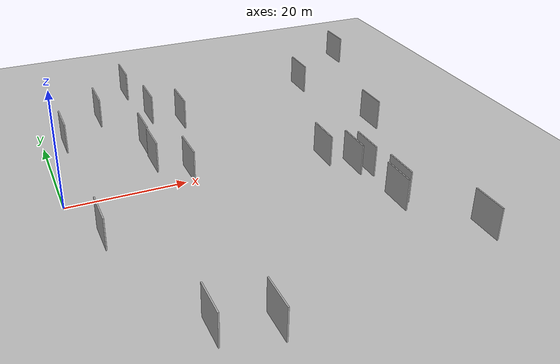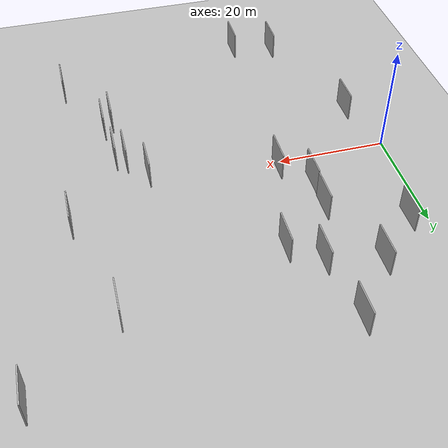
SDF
<?xml version="1.0" encoding="utf-8"?>

<sdf version="1.6">

   <world name="default">

      <gui fullscreen="0">

         <camera name="user_camera">

            <pose>-15 0 4.57585 0 0 0</pose>

            <view_controller>orbit</view_controller>

         </camera>

      </gui>

      <scene>

         <sky>

           <clouds>

             <speed>12</speed>

           </clouds>

         </sky>

         <ambient>0.4 0.4 0.4 1</ambient>

         <background>0.7 0.7 0.7 1</background>

         <shadows>1</shadows>

      </scene>

      <gravity>0 0 -9.8066</gravity>

      <magnetic_field>6e-06 2.3e-05 -4.2e-05</magnetic_field>

      <physics default="0" name="default_physics" type="ode">

         <ode>

            <solver>

               <type>quick</type>

               <iters>10</iters>

               <sor>1.0</sor>

               <use_dynamic_moi_rescaling>0</use_dynamic_moi_rescaling>

            </solver>

            <constraints>

               <cfm>0</cfm>

               <erp>0.2</erp>

               <contact_max_correcting_vel>100</contact_max_correcting_vel>

               <contact_surface_layer>0.001</contact_surface_layer>

            </constraints>

         </ode>

         <max_step_size>0.004</max_step_size>

         <real_time_factor>1</real_time_factor>

         <real_time_update_rate>250</real_time_update_rate>

      </physics>

      <light name="sun" type="directional">

         <cast_shadows>1</cast_shadows>

         <pose>0 0 10 0 0 0</pose>

         <diffuse>0.8 0.8 0.8 1</diffuse>

         <specular>0.2 0.2 0.2 1</specular>

         <attenuation>

            <range>1000</range>

            <constant>0.9</constant>

            <linear>0.01</linear>

            <quadratic>0.001</quadratic>

         </attenuation>

         <direction>-0.5 0.1 -0.9</direction>

      </light>

      <include>

         <name>ground_plane_1</name>

         <uri>model://HANNAS_ground_plane</uri>

         <pose>0 0 0  0 0 0</pose>

      </include>

      <include>

         <name>ground_plane_2</name>

         <uri>model://HANNAS_ground_plane</uri>

         <pose>100 0 0  0 0 0</pose>

      </include>

      <model name="HANNAS_wall_1">

         <static>1</static>

         <pose frame="">16.6074 13.3891 0.0 0.000000 0.000000 1.570796</pose>

         <link name="link">

            <pose frame="">0 0 3.00 0 0 0</pose>

            <collision name="collision">

               <geometry>

                  <box>

                     <size>6.00 0.2 6.00</size>

                  </box>

               </geometry>

               <max_contacts>10</max_contacts>

               <surface>

                  <contact>

                     <ode/>

                  </contact>

                  <bounce/>

                  <friction>

                     <torsional>

                        <ode/>

                     </torsional>

                     <ode/>

                  </friction>

               </surface>

            </collision>

            <visual name="visual">

               <cast_shadows>0</cast_shadows>

               <geometry>

                  <box>

                     <size>6.00 0.2 6.00</size>

                  </box>

               </geometry>

               <material>

                  <script>

                     <uri>model://HANNAS_wall/materials/scripts</uri>

                     <uri>model://HANNAS_wall/materials/textures</uri>

                     <name>vrc/HANNAS_wall</name>

                  </script>

               </material>

            </visual>

            <self_collide>0</self_collide>

            <enable_wind>0</enable_wind>

            <kinematic>0</kinematic>

         </link>

      </model>

      <model name="HANNAS_wall_2">

         <static>1</static>

         <pose frame="">11.3932 26.9885 0.0 0.000000 0.000000 1.570796</pose>

         <link name="link">

            <pose frame="">0 0 3.00 0 0 0</pose>

            <collision name="collision">

               <geometry>

                  <box>

                     <size>6.00 0.2 6.00</size>

                  </box>

               </geometry>

               <max_contacts>10</max_contacts>

               <surface>

                  <contact>

                     <ode/>

                  </contact>

                  <bounce/>

                  <friction>

                     <torsional>

                        <ode/>

                     </torsional>

                     <ode/>

                  </friction>

               </surface>

            </collision>

            <visual name="visual">

               <cast_shadows>0</cast_shadows>

               <geometry>

                  <box>

                     <size>6.00 0.2 6.00</size>

                  </box>

               </geometry>

               <material>

                  <script>

                     <uri>model://HANNAS_wall/materials/scripts</uri>

                     <uri>model://HANNAS_wall/materials/textures</uri>

                     <name>vrc/HANNAS_wall</name>

                  </script>

               </material>

            </visual>

            <self_collide>0</self_collide>

            <enable_wind>0</enable_wind>

            <kinematic>0</kinematic>

         </link>

      </model>

      <model name="HANNAS_wall_3">

         <static>1</static>

         <pose frame="">50.0877 -16.4734 0.0 0.000000 0.000000 1.570796</pose>

         <link name="link">

            <pose frame="">0 0 3.00 0 0 0</pose>

            <collision name="collision">

               <geometry>

                  <box>

                     <size>6.00 0.2 6.00</size>

                  </box>

               </geometry>

               <max_contacts>10</max_contacts>

               <surface>

                  <contact>

                     <ode/>

                  </contact>

                  <bounce/>

                  <friction>

                     <torsional>

                        <ode/>

                     </torsional>

                     <ode/>

                  </friction>

               </surface>

            </collision>

            <visual name="visual">

               <cast_shadows>0</cast_shadows>

               <geometry>

                  <box>

                     <size>6.00 0.2 6.00</size>

                  </box>

               </geometry>

               <material>

                  <script>

                     <uri>model://HANNAS_wall/materials/scripts</uri>

                     <uri>model://HANNAS_wall/materials/textures</uri>

                     <name>vrc/HANNAS_wall</name>

                  </script>

               </material>

            </visual>

            <self_collide>0</self_collide>

            <enable_wind>0</enable_wind>

            <kinematic>0</kinematic>

         </link>

      </model>

      <model name="HANNAS_wall_4">

         <static>1</static>

         <pose frame="">53.4508 26.8519 0.0 0.000000 0.000000 1.570796</pose>

         <link name="link">

            <pose frame="">0 0 3.00 0 0 0</pose>

            <collision name="collision">

               <geometry>

                  <box>

                     <size>6.00 0.2 6.00</size>

                  </box>

               </geometry>

               <max_contacts>10</max_contacts>

               <surface>

                  <contact>

                     <ode/>

                  </contact>

                  <bounce/>

                  <friction>

                     <torsional>

                        <ode/>

                     </torsional>

                     <ode/>

                  </friction>

               </surface>

            </collision>

            <visual name="visual">

               <cast_shadows>0</cast_shadows>

               <geometry>

                  <box>

                     <size>6.00 0.2 6.00</size>

                  </box>

               </geometry>

               <material>

                  <script>

                     <uri>model://HANNAS_wall/materials/scripts</uri>

                     <uri>model://HANNAS_wall/materials/textures</uri>

                     <name>vrc/HANNAS_wall</name>

                  </script>

               </material>

            </visual>

            <self_collide>0</self_collide>

            <enable_wind>0</enable_wind>

            <kinematic>0</kinematic>

         </link>

      </model>

      <model name="HANNAS_wall_5">

         <static>1</static>

         <pose frame="">21.2005 1.9819 0.0 0.000000 0.000000 1.570796</pose>

         <link name="link">

            <pose frame="">0 0 3.00 0 0 0</pose>

            <collision name="collision">

               <geometry>

                  <box>

                     <size>6.00 0.2 6.00</size>

                  </box>

               </geometry>

               <max_contacts>10</max_contacts>

               <surface>

                  <contact>

                     <ode/>

                  </contact>

                  <bounce/>

                  <friction>

                     <torsional>

                        <ode/>

                     </torsional>

                     <ode/>

                  </friction>

               </surface>

            </collision>

            <visual name="visual">

               <cast_shadows>0</cast_shadows>

               <geometry>

                  <box>

                     <size>6.00 0.2 6.00</size>

                  </box>

               </geometry>

               <material>

                  <script>

                     <uri>model://HANNAS_wall/materials/scripts</uri>

                     <uri>model://HANNAS_wall/materials/textures</uri>

                     <name>vrc/HANNAS_wall</name>

                  </script>

               </material>

            </visual>

            <self_collide>0</self_collide>

            <enable_wind>0</enable_wind>

            <kinematic>0</kinematic>

         </link>

      </model>

      <model name="HANNAS_wall_6">

         <static>1</static>

         <pose frame="">3.6694 19.3817 0.0 0.000000 0.000000 1.570796</pose>

         <link name="link">

            <pose frame="">0 0 3.00 0 0 0</pose>

            <collision name="collision">

               <geometry>

                  <box>

                     <size>6.00 0.2 6.00</size>

                  </box>

               </geometry>

               <max_contacts>10</max_contacts>

               <surface>

                  <contact>

                     <ode/>

                  </contact>

                  <bounce/>

                  <friction>

                     <torsional>

                        <ode/>

                     </torsional>

                     <ode/>

                  </friction>

               </surface>

            </collision>

            <visual name="visual">

               <cast_shadows>0</cast_shadows>

               <geometry>

                  <box>

                     <size>6.00 0.2 6.00</size>

                  </box>

               </geometry>

               <material>

                  <script>

                     <uri>model://HANNAS_wall/materials/scripts</uri>

                     <uri>model://HANNAS_wall/materials/textures</uri>

                     <name>vrc/HANNAS_wall</name>

                  </script>

               </material>

            </visual>

            <self_collide>0</self_collide>

            <enable_wind>0</enable_wind>

            <kinematic>0</kinematic>

         </link>

      </model>

      <model name="HANNAS_wall_7">

         <static>1</static>

         <pose frame="">67.8193 38.0876 0.0 0.000000 0.000000 1.570796</pose>

         <link name="link">

            <pose frame="">0 0 3.00 0 0 0</pose>

            <collision name="collision">

               <geometry>

                  <box>

                     <size>6.00 0.2 6.00</size>

                  </box>

               </geometry>

               <max_contacts>10</max_contacts>

               <surface>

                  <contact>

                     <ode/>

                  </contact>

                  <bounce/>

                  <friction>

                     <torsional>

                        <ode/>

                     </torsional>

                     <ode/>

                  </friction>

               </surface>

            </collision>

            <visual name="visual">

               <cast_shadows>0</cast_shadows>

               <geometry>

                  <box>

                     <size>6.00 0.2 6.00</size>

                  </box>

               </geometry>

               <material>

                  <script>

                     <uri>model://HANNAS_wall/materials/scripts</uri>

                     <uri>model://HANNAS_wall/materials/textures</uri>

                     <name>vrc/HANNAS_wall</name>

                  </script>

               </material>

            </visual>

            <self_collide>0</self_collide>

            <enable_wind>0</enable_wind>

            <kinematic>0</kinematic>

         </link>

      </model>

      <model name="HANNAS_wall_8">

         <static>1</static>

         <pose frame="">47.4550 -6.4200 0.0 0.000000 0.000000 1.570796</pose>

         <link name="link">

            <pose frame="">0 0 3.00 0 0 0</pose>

            <collision name="collision">

               <geometry>

                  <box>

                     <size>6.00 0.2 6.00</size>

                  </box>

               </geometry>

               <max_contacts>10</max_contacts>

               <surface>

                  <contact>

                     <ode/>

                  </contact>

                  <bounce/>

                  <friction>

                     <torsional>

                        <ode/>

                     </torsional>

                     <ode/>

                  </friction>

               </surface>

            </collision>

            <visual name="visual">

               <cast_shadows>0</cast_shadows>

               <geometry>

                  <box>

                     <size>6.00 0.2 6.00</size>

                  </box>

               </geometry>

               <material>

                  <script>

                     <uri>model://HANNAS_wall/materials/scripts</uri>

                     <uri>model://HANNAS_wall/materials/textures</uri>

                     <name>vrc/HANNAS_wall</name>

                  </script>

               </material>

            </visual>

            <self_collide>0</self_collide>

            <enable_wind>0</enable_wind>

            <kinematic>0</kinematic>

         </link>

      </model>

      <model name="HANNAS_wall_9">

         <static>1</static>

         <pose frame="">3.5678 -10.9646 0.0 0.000000 0.000000 1.570796</pose>

         <link name="link">

            <pose frame="">0 0 3.00 0 0 0</pose>

            <collision name="collision">

               <geometry>

                  <box>

                     <size>6.00 0.2 6.00</size>

                  </box>

               </geometry>

               <max_contacts>10</max_contacts>

               <surface>

                  <contact>

                     <ode/>

                  </contact>

                  <bounce/>

                  <friction>

                     <torsional>

                        <ode/>

                     </torsional>

                     <ode/>

                  </friction>

               </surface>

            </collision>

            <visual name="visual">

               <cast_shadows>0</cast_shadows>

               <geometry>

                  <box>

                     <size>6.00 0.2 6.00</size>

                  </box>

               </geometry>

               <material>

                  <script>

                     <uri>model://HANNAS_wall/materials/scripts</uri>

                     <uri>model://HANNAS_wall/materials/textures</uri>

                     <name>vrc/HANNAS_wall</name>

                  </script>

               </material>

            </visual>

            <self_collide>0</self_collide>

            <enable_wind>0</enable_wind>

            <kinematic>0</kinematic>

         </link>

      </model>

      <model name="HANNAS_wall_10">

         <static>1</static>

         <pose frame="">49.2062 -7.6290 0.0 0.000000 0.000000 1.570796</pose>

         <link name="link">

            <pose frame="">0 0 3.00 0 0 0</pose>

            <collision name="collision">

               <geometry>

                  <box>

                     <size>6.00 0.2 6.00</size>

                  </box>

               </geometry>

               <max_contacts>10</max_contacts>

               <surface>

                  <contact>

                     <ode/>

                  </contact>

                  <bounce/>

                  <friction>

                     <torsional>

                        <ode/>

                     </torsional>

                     <ode/>

                  </friction>

               </surface>

            </collision>

            <visual name="visual">

               <cast_shadows>0</cast_shadows>

               <geometry>

                  <box>

                     <size>6.00 0.2 6.00</size>

                  </box>

               </geometry>

               <material>

                  <script>

                     <uri>model://HANNAS_wall/materials/scripts</uri>

                     <uri>model://HANNAS_wall/materials/textures</uri>

                     <name>vrc/HANNAS_wall</name>

                  </script>

               </material>

            </visual>

            <self_collide>0</self_collide>

            <enable_wind>0</enable_wind>

            <kinematic>0</kinematic>

         </link>

      </model>

      <model name="HANNAS_wall_11">

         <static>1</static>

         <pose frame="">18.8695 36.5396 0.0 0.000000 0.000000 1.570796</pose>

         <link name="link">

            <pose frame="">0 0 3.00 0 0 0</pose>

            <collision name="collision">

               <geometry>

                  <box>

                     <size>6.00 0.2 6.00</size>

                  </box>

               </geometry>

               <max_contacts>10</max_contacts>

               <surface>

                  <contact>

                     <ode/>

                  </contact>

                  <bounce/>

                  <friction>

                     <torsional>

                        <ode/>

                     </torsional>

                     <ode/>

                  </friction>

               </surface>

            </collision>

            <visual name="visual">

               <cast_shadows>0</cast_shadows>

               <geometry>

                  <box>

                     <size>6.00 0.2 6.00</size>

                  </box>

               </geometry>

               <material>

                  <script>

                     <uri>model://HANNAS_wall/materials/scripts</uri>

                     <uri>model://HANNAS_wall/materials/textures</uri>

                     <name>vrc/HANNAS_wall</name>

                  </script>

               </material>

            </visual>

            <self_collide>0</self_collide>

            <enable_wind>0</enable_wind>

            <kinematic>0</kinematic>

         </link>

      </model>

      <model name="HANNAS_wall_12">

         <static>1</static>

         <pose frame="">19.5187 -36.9543 0.0 0.000000 0.000000 1.570796</pose>

         <link name="link">

            <pose frame="">0 0 3.00 0 0 0</pose>

            <collision name="collision">

               <geometry>

                  <box>

                     <size>6.00 0.2 6.00</size>

                  </box>

               </geometry>

               <max_contacts>10</max_contacts>

               <surface>

                  <contact>

                     <ode/>

                  </contact>

                  <bounce/>

                  <friction>

                     <torsional>

                        <ode/>

                     </torsional>

                     <ode/>

                  </friction>

               </surface>

            </collision>

            <visual name="visual">

               <cast_shadows>0</cast_shadows>

               <geometry>

                  <box>

                     <size>6.00 0.2 6.00</size>

                  </box>

               </geometry>

               <material>

                  <script>

                     <uri>model://HANNAS_wall/materials/scripts</uri>

                     <uri>model://HANNAS_wall/materials/textures</uri>

                     <name>vrc/HANNAS_wall</name>

                  </script>

               </material>

            </visual>

            <self_collide>0</self_collide>

            <enable_wind>0</enable_wind>

            <kinematic>0</kinematic>

         </link>

      </model>

      <model name="HANNAS_wall_13">

         <static>1</static>

         <pose frame="">20.6415 24.5656 0.0 0.000000 0.000000 1.570796</pose>

         <link name="link">

            <pose frame="">0 0 3.00 0 0 0</pose>

            <collision name="collision">

               <geometry>

                  <box>

                     <size>6.00 0.2 6.00</size>

                  </box>

               </geometry>

               <max_contacts>10</max_contacts>

               <surface>

                  <contact>

                     <ode/>

                  </contact>

                  <bounce/>

                  <friction>

                     <torsional>

                        <ode/>

                     </torsional>

                     <ode/>

                  </friction>

               </surface>

            </collision>

            <visual name="visual">

               <cast_shadows>0</cast_shadows>

               <geometry>

                  <box>

                     <size>6.00 0.2 6.00</size>

                  </box>

               </geometry>

               <material>

                  <script>

                     <uri>model://HANNAS_wall/materials/scripts</uri>

                     <uri>model://HANNAS_wall/materials/textures</uri>

                     <name>vrc/HANNAS_wall</name>

                  </script>

               </material>

            </visual>

            <self_collide>0</self_collide>

            <enable_wind>0</enable_wind>

            <kinematic>0</kinematic>

         </link>

      </model>

      <model name="HANNAS_wall_14">

         <static>1</static>

         <pose frame="">56.3731 -29.8533 0.0 0.000000 0.000000 1.570796</pose>

         <link name="link">

            <pose frame="">0 0 3.00 0 0 0</pose>

            <collision name="collision">

               <geometry>

                  <box>

                     <size>6.00 0.2 6.00</size>

                  </box>

               </geometry>

               <max_contacts>10</max_contacts>

               <surface>

                  <contact>

                     <ode/>

                  </contact>

                  <bounce/>

                  <friction>

                     <torsional>

                        <ode/>

                     </torsional>

                     <ode/>

                  </friction>

               </surface>

            </collision>

            <visual name="visual">

               <cast_shadows>0</cast_shadows>

               <geometry>

                  <box>

                     <size>6.00 0.2 6.00</size>

                  </box>

               </geometry>

               <material>

                  <script>

                     <uri>model://HANNAS_wall/materials/scripts</uri>

                     <uri>model://HANNAS_wall/materials/textures</uri>

                     <name>vrc/HANNAS_wall</name>

                  </script>

               </material>

            </visual>

            <self_collide>0</self_collide>

            <enable_wind>0</enable_wind>

            <kinematic>0</kinematic>

         </link>

      </model>

      <model name="HANNAS_wall_15">

         <static>1</static>

         <pose frame="">11.5971 -34.7823 0.0 0.000000 0.000000 1.570796</pose>

         <link name="link">

            <pose frame="">0 0 3.00 0 0 0</pose>

            <collision name="collision">

               <geometry>

                  <box>

                     <size>6.00 0.2 6.00</size>

                  </box>

               </geometry>

               <max_contacts>10</max_contacts>

               <surface>

                  <contact>

                     <ode/>

                  </contact>

                  <bounce/>

                  <friction>

                     <torsional>

                        <ode/>

                     </torsional>

                     <ode/>

                  </friction>

               </surface>

            </collision>

            <visual name="visual">

               <cast_shadows>0</cast_shadows>

               <geometry>

                  <box>

                     <size>6.00 0.2 6.00</size>

                  </box>

               </geometry>

               <material>

                  <script>

                     <uri>model://HANNAS_wall/materials/scripts</uri>

                     <uri>model://HANNAS_wall/materials/textures</uri>

                     <name>vrc/HANNAS_wall</name>

                  </script>

               </material>

            </visual>

            <self_collide>0</self_collide>

            <enable_wind>0</enable_wind>

            <kinematic>0</kinematic>

         </link>

      </model>

      <model name="HANNAS_wall_16">

         <static>1</static>

         <pose frame="">58.6077 6.9284 0.0 0.000000 0.000000 1.570796</pose>

         <link name="link">

            <pose frame="">0 0 3.00 0 0 0</pose>

            <collision name="collision">

               <geometry>

                  <box>

                     <size>6.00 0.2 6.00</size>

                  </box>

               </geometry>

               <max_contacts>10</max_contacts>

               <surface>

                  <contact>

                     <ode/>

                  </contact>

                  <bounce/>

                  <friction>

                     <torsional>

                        <ode/>

                     </torsional>

                     <ode/>

                  </friction>

               </surface>

            </collision>

            <visual name="visual">

               <cast_shadows>0</cast_shadows>

               <geometry>

                  <box>

                     <size>6.00 0.2 6.00</size>

                  </box>

               </geometry>

               <material>

                  <script>

                     <uri>model://HANNAS_wall/materials/scripts</uri>

                     <uri>model://HANNAS_wall/materials/textures</uri>

                     <name>vrc/HANNAS_wall</name>

                  </script>

               </material>

            </visual>

            <self_collide>0</self_collide>

            <enable_wind>0</enable_wind>

            <kinematic>0</kinematic>

         </link>

      </model>

      <model name="HANNAS_wall_17">

         <static>1</static>

         <pose frame="">25.7342 20.6157 0.0 0.000000 0.000000 1.570796</pose>

         <link name="link">

            <pose frame="">0 0 3.00 0 0 0</pose>

            <collision name="collision">

               <geometry>

                  <box>

                     <size>6.00 0.2 6.00</size>

                  </box>

               </geometry>

               <max_contacts>10</max_contacts>

               <surface>

                  <contact>

                     <ode/>

                  </contact>

                  <bounce/>

                  <friction>

                     <torsional>

                        <ode/>

                     </torsional>

                     <ode/>

                  </friction>

               </surface>

            </collision>

            <visual name="visual">

               <cast_shadows>0</cast_shadows>

               <geometry>

                  <box>

                     <size>6.00 0.2 6.00</size>

                  </box>

               </geometry>

               <material>

                  <script>

                     <uri>model://HANNAS_wall/materials/scripts</uri>

                     <uri>model://HANNAS_wall/materials/textures</uri>

                     <name>vrc/HANNAS_wall</name>

                  </script>

               </material>

            </visual>

            <self_collide>0</self_collide>

            <enable_wind>0</enable_wind>

            <kinematic>0</kinematic>

         </link>

      </model>

      <model name="HANNAS_wall_18">

         <static>1</static>

         <pose frame="">48.4342 -18.3689 0.0 0.000000 0.000000 1.570796</pose>

         <link name="link">

            <pose frame="">0 0 3.00 0 0 0</pose>

            <collision name="collision">

               <geometry>

                  <box>

                     <size>6.00 0.2 6.00</size>

                  </box>

               </geometry>

               <max_contacts>10</max_contacts>

               <surface>

                  <contact>

                     <ode/>

                  </contact>

                  <bounce/>

                  <friction>

                     <torsional>

                        <ode/>

                     </torsional>

                     <ode/>

                  </friction>

               </surface>

            </collision>

            <visual name="visual">

               <cast_shadows>0</cast_shadows>

               <geometry>

                  <box>

                     <size>6.00 0.2 6.00</size>

                  </box>

               </geometry>

               <material>

                  <script>

                     <uri>model://HANNAS_wall/materials/scripts</uri>

                     <uri>model://HANNAS_wall/materials/textures</uri>

                     <name>vrc/HANNAS_wall</name>

                  </script>

               </material>

            </visual>

            <self_collide>0</self_collide>

            <enable_wind>0</enable_wind>

            <kinematic>0</kinematic>

         </link>

      </model>

      <model name="HANNAS_wall_19">

         <static>1</static>

         <pose frame="">44.1155 -1.9035 0.0 0.000000 0.000000 1.570796</pose>

         <link name="link">

            <pose frame="">0 0 3.00 0 0 0</pose>

            <collision name="collision">

               <geometry>

                  <box>

                     <size>6.00 0.2 6.00</size>

                  </box>

               </geometry>

               <max_contacts>10</max_contacts>

               <surface>

                  <contact>

                     <ode/>

                  </contact>

                  <bounce/>

                  <friction>

                     <torsional>

                        <ode/>

                     </torsional>

                     <ode/>

                  </friction>

               </surface>

            </collision>

            <visual name="visual">

               <cast_shadows>0</cast_shadows>

               <geometry>

                  <box>

                     <size>6.00 0.2 6.00</size>

                  </box>

               </geometry>

               <material>

                  <script>

                     <uri>model://HANNAS_wall/materials/scripts</uri>

                     <uri>model://HANNAS_wall/materials/textures</uri>

                     <name>vrc/HANNAS_wall</name>

                  </script>

               </material>

            </visual>

            <self_collide>0</self_collide>

            <enable_wind>0</enable_wind>

            <kinematic>0</kinematic>

         </link>

      </model>

      <model name="HANNAS_wall_20">

         <static>1</static>

         <pose frame="">16.4522 7.0796 0.0 0.000000 0.000000 1.570796</pose>

         <link name="link">

            <pose frame="">0 0 3.00 0 0 0</pose>

            <collision name="collision">

               <geometry>

                  <box>

                     <size>6.00 0.2 6.00</size>

                  </box>

               </geometry>

               <max_contacts>10</max_contacts>

               <surface>

                  <contact>

                     <ode/>

                  </contact>

                  <bounce/>

                  <friction>

                     <torsional>

                        <ode/>

                     </torsional>

                     <ode/>

                  </friction>

               </surface>

            </collision>

            <visual name="visual">

               <cast_shadows>0</cast_shadows>

               <geometry>

                  <box>

                     <size>6.00 0.2 6.00</size>

                  </box>

               </geometry>

               <material>

                  <script>

                     <uri>model://HANNAS_wall/materials/scripts</uri>

                     <uri>model://HANNAS_wall/materials/textures</uri>

                     <name>vrc/HANNAS_wall</name>

                  </script>

               </material>

            </visual>

            <self_collide>0</self_collide>

            <enable_wind>0</enable_wind>

            <kinematic>0</kinematic>

         </link>

      </model>

   </world>

</sdf>

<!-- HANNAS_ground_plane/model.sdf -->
<sdf version="1.4">
<model name="HANNAS_ground_plane">
  <static>true</static>
    <link name="link">
      <collision name="collision">
        <geometry>
          <plane>
            <normal>0 0 1</normal>
            <size>1000 1000</size>
          </plane>
        </geometry>
        <surface>
          <friction>
            <ode>
              <mu>100</mu>
              <mu2>50</mu2>
            </ode>
          </friction>
        </surface>
      </collision>
      <visual name="visual">
        <cast_shadows>false</cast_shadows>
        <geometry>
          <plane>
            <normal>0 0 1</normal>
            <size>1000 1000</size>
          </plane>
        </geometry>
        <material>
          <script>
            <uri>model://HANNAS_ground_plane/materials/scripts/HANNAS_ground_plane.material</uri>
	    <uri>model://HANNAS_ground_plane/materials/textures</uri>
            <name>HANNASGroundPlane/Image</name>
          </script>
        </material>
      </visual>
    </link>
  </model>
</sdf>
